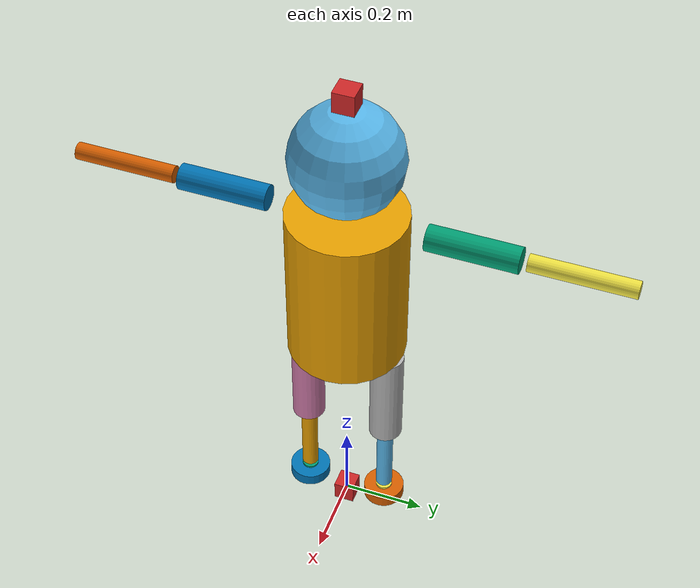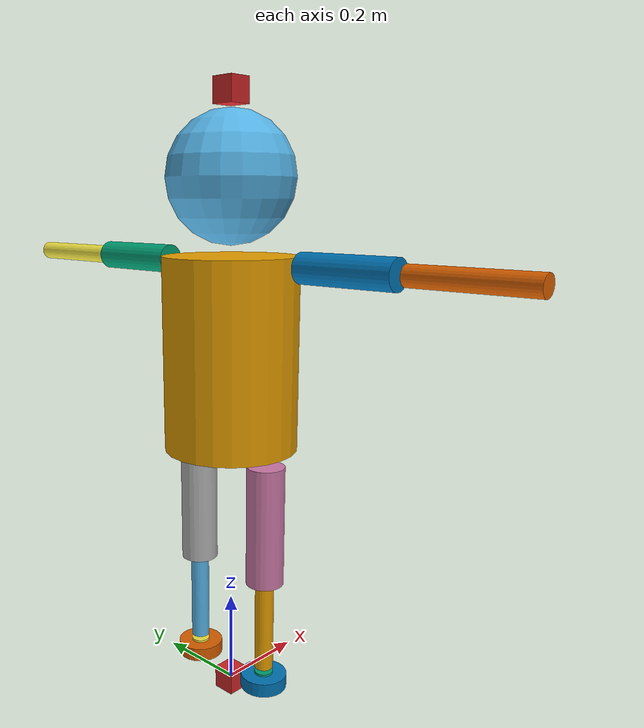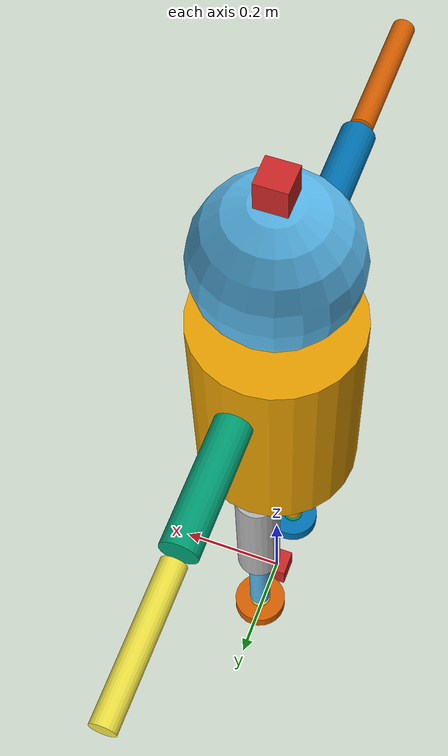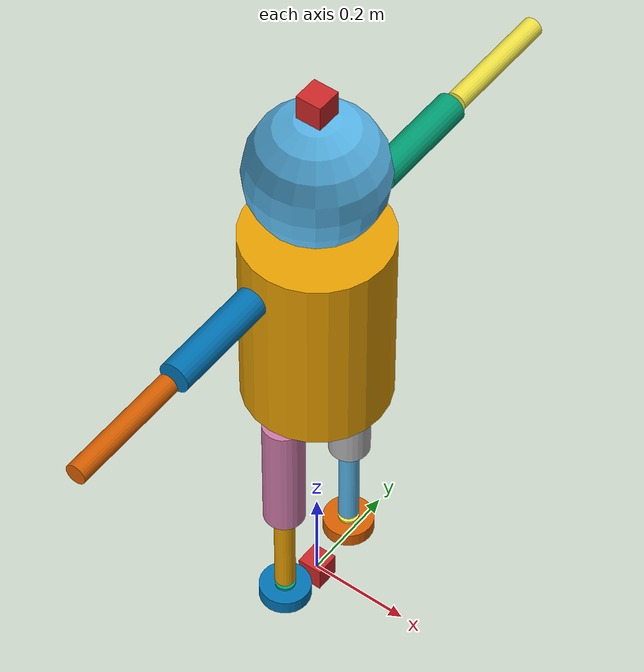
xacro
<?xml version="1.0" ?>
<robot name="human_model" xmlns:xacro="http://www.ros.org/wiki/xacro">

 <xacro:include filename="$(find hokuyo_description)/xacro/hokuyo.gazebo.xacro" />
 <xacro:include filename="$(find hokuyo_description)/xacro/camera.gazebo.xacro" />

<xacro:property name="width" value="0.14" />
<xacro:property name="bodylen" value="0.4" />
  <link name="base_link">
    <visual>
      <origin rpy="0 0 0" xyz="0 0 0.75"/>
      <geometry>
        <cylinder length="${bodylen}" radius="${width}"/>
      </geometry>
    </visual>
  <collision>
      <geometry>
         <cylinder length="${bodylen}" radius="${width}"/>
      </geometry>
    </collision>
    <inertial>
      <mass value="24.1572"/>
      <inertia ixx="0.23674056" ixy="0.0" ixz="0.0" iyy="0.23674056" iyz="0.0" izz="0.23674056"/>
    </inertial>
  </link>

<xacro:property name="width" value="0.13" />
     <link name="human_head">
    <visual>
      <origin rpy="0 0 0" xyz="0 0 0.15"/>
      <geometry>
        <sphere radius="${width}"/>
      </geometry>
    </visual>
    <collision>
      <geometry>
         <sphere radius="${width}"/>
      </geometry>
    </collision>
     <inertial>
      <mass value="9.0344"/>
      <inertia ixx="0.23674056" ixy="0.0" ixz="0.0" iyy="0.23674056" iyz="0.0" izz="0.23674056"/>
    </inertial>
  </link>

  <joint name="base_link_to_human_head" type="revolute">
    <origin rpy="0 0 0" xyz="0 0 0.95"/>
    <axis xyz="0 0 1"/>
    <parent link="base_link"/>
    <child link="human_head"/>
  <limit effort="1" lower="-1.57079632679" upper="1.57079632679" velocity="1"/>
  </joint>

<xacro:property name="width" value="0.03" />
<xacro:property name="bodylen" value="0.21" />
 <link name="right_forearm">
    <visual>
      <origin rpy="-1.57079632679 0 0" xyz="0 0.15 0.0"/>
      <geometry>
        <cylinder length="${bodylen}" radius="${width}"/>
      </geometry>
    </visual>
   <collision>
      <geometry>
        <cylinder length="${bodylen}" radius="${width}"/>
      </geometry>
    </collision>
     <inertial>
      <mass value="0.5892"/>
      <inertia ixx="0.00026514" ixy="0.0" ixz="0.0" iyy="0.00026514" iyz="0.0" izz="0.00026514"/>
    </inertial>
  </link>

 <joint name="right_forearm_to_base_link" type="revolute">
    <origin rpy="0 0 0" xyz="0 0.137654678 0.935545678"/>
   <axis xyz="0 1 0"/>
    <parent link="base_link"/>
    <child link="right_forearm"/>
   <limit effort="1" lower="-1.57079632679" upper="1.57079632679" velocity="1"/>
  </joint>

<xacro:property name="width" value="0.02" />
<xacro:property name="bodylen" value="0.24" />
<link name="right_arm">
    <visual>
      <origin rpy="-1.57079632679 0 0" xyz="0 0.1 0"/>
      <geometry>
        <cylinder length="${bodylen}" radius="${width}"/>
      </geometry>
    </visual> <collision>
      <geometry>
        <cylinder length="${bodylen}" radius="${width}"/>
      </geometry>
    </collision>
    <inertial>
      <mass value="0.2946"/>
      <inertia ixx="0.00005892" ixy="0.0" ixz="0.0" iyy="0.00005892" iyz="0.0" izz="0.00005892"/>
    </inertial>
  </link>

 <joint name="right_arm_to_forearm" type="revolute">
    <origin rpy="0 0 0" xyz="0.0 0.2899 0.0"/>
   <axis xyz="1 0 0"/>
    <parent link="right_forearm"/>
    <child link="right_arm"/>
   <limit effort="1" lower="-3.14159265359" upper="0.08726646" velocity="1"/>
  </joint>

<xacro:property name="width" value="0.03" />
<xacro:property name="bodylen" value="0.21" />
<link name="left_forearm">
    <visual>
      <origin rpy="-1.57079632679 0 0" xyz="0 -0.15 0.0"/>
      <geometry>
         <cylinder length="${bodylen}" radius="${width}"/>
      </geometry>
    </visual>
    <collision>
      <geometry>
         <cylinder length="${bodylen}" radius="${width}"/>
      </geometry>
    </collision>
      <inertial>
      <mass value="0.5892"/>
      <inertia ixx="0.00026514" ixy="0.0" ixz="0.0" iyy="0.00026514" iyz="0.0" izz="0.00026514"/>
    </inertial>
  </link>

 <joint name="left_forearm_to_base_link" type="revolute">
    <origin rpy="0 0 0" xyz="0 -0.137654678 0.935545678"/>
   <axis xyz="0 1 0"/>
    <parent link="base_link"/>
    <child link="left_forearm"/>
   <limit effort="1" lower="-1.57079632679" upper="1.57079632679" velocity="1"/>
  </joint>

<xacro:property name="width" value="0.02" />
<xacro:property name="bodylen" value="0.24" />
<link name="left_arm">
    <visual>
      <origin rpy="-1.57079632679 0 0" xyz="0 -0.1 0"/>
      <geometry>
        <cylinder length="${bodylen}" radius="${width}"/>
      </geometry>
    </visual>
    <collision>
      <geometry>
        <cylinder length="${bodylen}" radius="${width}"/>
      </geometry>
    </collision>
     <inertial>
      <mass value="0.2946"/>
      <inertia ixx="0.00005892" ixy="0.0" ixz="0.0" iyy="0.00005892" iyz="0.0" izz="0.00005892"/>
    </inertial>
  </link>

 <joint name="left_arm_to_forearm" type="revolute">
    <origin rpy="0 0 0" xyz="0.0 -0.2899 0.0"/>
   <axis xyz="1 0 0"/>
    <parent link="left_forearm"/>
    <child link="left_arm"/>
   <limit effort="1" lower="-3.14159265359" upper="0.08726646" velocity="1"/>
  </joint>

<xacro:property name="width" value="0.04" />
<xacro:property name="bodylen" value="0.26" />
  <link name="right_thigh">
    <visual>
      <origin rpy="0 0 0" xyz="0 0.0 -0.14"/>
      <geometry>
        <cylinder length="${bodylen}" radius="${width}"/>
      </geometry>
    </visual>
   <collision>
      <geometry>
        <cylinder length="${bodylen}" radius="${width}"/>
      </geometry>
    </collision>
     <inertial>
      <mass value="1.2766"/>
      <inertia ixx="0.00102128" ixy="0.0" ixz="0.0" iyy="0.00102128" iyz="0.0" izz="0.00102128"/>
    </inertial>
  </link>

 <joint name="right_thigh_to_base_link" type="revolute">
    <origin rpy="0 0 0" xyz="0 -0.1 0.54"/>
   <axis xyz="0 0 1"/>
    <parent link="base_link"/>
    <child link="right_thigh"/>
   <limit effort="1" lower="0" upper="1.57079632679" velocity="1"/>
  </joint>

<xacro:property name="width" value="0.04" />
<xacro:property name="bodylen" value="0.26" />
 <link name="left_thigh">
    <visual>
      <origin rpy="0 0 0" xyz="0 0.0 -0.14"/>
      <geometry>
        <cylinder length="${bodylen}" radius="${width}"/>
      </geometry>
    </visual>
    <collision>
      <geometry>
        <cylinder length="${bodylen}" radius="${width}"/>
      </geometry>
    </collision>
      <inertial>
      <mass value="1.2766"/>
      <inertia ixx="0.00102128" ixy="0.0" ixz="0.0" iyy="0.00102128" iyz="0.0" izz="0.00102128"/>
    </inertial>
  </link>

 <joint name="left_thigh_to_base_link" type="revolute">
    <origin rpy="0 0 0" xyz="0 0.1 0.54"/>
   <axis xyz="0 0 1"/>
    <parent link="base_link"/>
    <child link="left_thigh"/>
   <limit effort="1" lower="0" upper="1.57079632679" velocity="1"/>
  </joint>

<xacro:property name="width" value="0.02" />
<xacro:property name="bodylen" value="0.2" />
 <link name="right_leg">
    <visual>
      <origin rpy="0 0 0" xyz="0 0 -0.1"/>
      <geometry>
        <cylinder length="${bodylen}" radius="${width}"/>
      </geometry>
    </visual>
     <collision>
      <geometry>
        <cylinder length="${bodylen}" radius="${width}"/>
      </geometry>
    </collision>
     <inertial>
      <mass value="0.2455"/>
      <inertia ixx="0.0000491" ixy="0.0" ixz="0.0" iyy="0.0000491" iyz="0.0" izz="0.0000491"/>
    </inertial>
  </link>

 <joint name="right_leg_to_right_thigh" type="revolute">
    <origin rpy="0 0 0" xyz="0 0 -0.27"/>
   <axis xyz="0 0 1"/>
    <parent link="right_thigh"/>
    <child link="right_leg"/>
   <limit effort="1" lower="0" upper="-1.57079632679" velocity="1"/>
  </joint>

<xacro:property name="width" value="0.02" />
<xacro:property name="bodylen" value="0.2" />
<link name="left_leg">
    <visual>
      <origin rpy="0 0 0" xyz="0 0 -0.1"/>
      <geometry>
        <cylinder length="${bodylen}" radius="${width}"/>
      </geometry>
    </visual>
    <collision>
      <geometry>
        <cylinder length="${bodylen}" radius="${width}"/>
      </geometry>
    </collision>
       <inertial>
      <mass value="0.2455"/>
      <inertia ixx="0.0000491" ixy="0.0" ixz="0.0" iyy="0.0000491" iyz="0.0" izz="0.0000491"/>
    </inertial>
  </link>

 <joint name="left_leg_to_left_thigh" type="revolute">
    <origin rpy="0 0 0" xyz="0 0 -0.27"/>
   <axis xyz="0 0 1"/>
    <parent link="left_thigh"/>
    <child link="left_leg"/>
   <limit effort="1" lower="0" upper="-1.57079632679" velocity="1"/>
  </joint>

<xacro:property name="width" value="0.02" />
<xacro:property name="bodylen" value="0.03" />
 <link name="right_ankle">
    <visual>
      <origin rpy="0 0 0" xyz="0 0 -0.025"/>
      <geometry>
        <cylinder length="${bodylen}" radius="${width}"/>
      </geometry>
    </visual>
     <collision>
      <geometry>
        <cylinder length="${bodylen}" radius="${width}"/>
      </geometry>
    </collision>
    <inertial>
      <mass value="0.036334"/>
    <inertia ixx="0.000072667" ixy="0.0" ixz="0.0" iyy="0.000072667" iyz="0.0" izz="0.000072667"/>
    </inertial>
  </link>

 <joint name="right_leg_to_right_ankle" type="revolute">
    <origin rpy="0 0 0" xyz="0 0 -0.2"/>
   <axis xyz="0 1 0"/>
    <parent link="right_leg"/>
    <child link="right_ankle"/>
   <limit effort="1" lower="-1.57079632679" upper="1.57079632679" velocity="1"/>
  </joint>

<xacro:property name="width" value="0.02" />
<xacro:property name="bodylen" value="0.03" />
 <link name="left_ankle">
    <visual>
      <origin rpy="0 0 0" xyz="0 0 -0.025"/>
      <geometry>
        <cylinder length="${bodylen}" radius="${width}"/>
      </geometry>
    </visual>
     <collision>
      <geometry>
        <cylinder length="${bodylen}" radius="${width}"/>
      </geometry>
    </collision>
      <inertial>
      <mass value="0.036334"/>
    <inertia ixx="0.000072667" ixy="0.0" ixz="0.0" iyy="0.000072667" iyz="0.0" izz="0.000072667"/>
    </inertial>
  </link>

 <joint name="left_leg_to_left_ankle" type="revolute">
    <origin rpy="0 0 0" xyz="0 0 -0.2"/>
   <axis xyz="0 1 0"/>
    <parent link="left_leg"/>
    <child link="left_ankle"/>
   <limit effort="1" lower="-1.57079632679" upper="1.57079632679" velocity="1"/>
  </joint>

<xacro:property name="width" value="0.05" />
<xacro:property name="bodylen" value="0.03" />
 <link name="right_foot">
    <visual>
      <origin rpy="0 0 0" xyz="0 0 -0.03"/>
      <geometry>
        <cylinder length="${bodylen}" radius="${width}"/>
      </geometry>
    </visual>
      <collision>
      <geometry>
        <cylinder length="${bodylen}" radius="${width}"/>
      </geometry>
    </collision>
      <inertial>
      <mass value="0.22586"/>
    <inertia ixx="0.000282325" ixy="0.0" ixz="0.0" iyy="0.000282325" iyz="0.0" izz="0.000282325"/>
    </inertial>
  </link>

 <joint name="right_foot_to_right_ankle" type="fixed">
    <origin rpy="0 0 0" xyz="0 0 0"/>
    <parent link="right_ankle"/>
    <child link="right_foot"/>
  </joint>

<xacro:property name="width" value="0.05" />
<xacro:property name="bodylen" value="0.03" />
 <link name="left_foot">
    <visual>
      <origin rpy="0 0 0" xyz="0 0 -0.03"/>
      <geometry>
        <cylinder length="${bodylen}" radius="${width}"/>
      </geometry>
    </visual>
      <collision>
      <geometry>
        <cylinder length="${bodylen}" radius="${width}"/>
      </geometry>
    </collision>
    <inertial>
      <mass value="0.22586"/>
    <inertia ixx="0.000282325" ixy="0.0" ixz="0.0" iyy="0.000282325" iyz="0.0" izz="0.000282325"/>
    </inertial>
  </link>

<joint name="left_foot_to_left_ankle" type="fixed">
    <origin rpy="0 0 0" xyz="0 0 0"/>
    <parent link="left_ankle"/>
    <child link="left_foot"/>
  </joint>

 <!-- Hokuyo -->
<xacro:property name="hokuyo_link" value="0.05" /> <!-- Size of square 'laser' box -->
 <joint name="hokuyo_joint" type="fixed">
    <axis xyz="0 1 0" />
    <origin xyz="0 0 0" rpy="0 0 0"/>
    <parent link="base_link"/>
    <child link="hokuyo_link"/>
  </joint>

  <link name="hokuyo_link">
    <collision>
      <origin xyz="0 0 0" rpy="0 0 0"/>
      <geometry>
    <box size="${hokuyo_link} ${hokuyo_link} ${hokuyo_link}"/>
      </geometry>
    </collision>

    <visual>
      <origin xyz="0 0 0" rpy="0 0 0"/>
      <geometry>
    <box size="${hokuyo_link} ${hokuyo_link} ${hokuyo_link}"/>
    <mesh filename="package://human_description/mesh//hokuyo.dae"/>
      </geometry>
      <material name="red"/>
    </visual>

    <inertial>
      <mass value="1e-5" />
      <origin xyz="0 0 0" rpy="0 0 0"/>
      <inertia ixx="1e-6" ixy="0" ixz="0" iyy="1e-6" iyz="0" izz="1e-6" />
    </inertial>
  </link>

 <!-- Camera -->
 <xacro:property name="camera_link" value="0.05" /> <!-- Size of square 'camera' box -->
 <joint name="camera_joint" type="fixed">
    <axis xyz="0 1 0" />
    <origin xyz="0 0 1.26" rpy="0 0 0"/>
    <parent link="base_link"/>
    <child link="camera_link"/>
  </joint>

  <link name="camera_link">
    <collision>
      <origin xyz="0 0 0" rpy="0 0 0"/>
      <geometry>
    <box size="${camera_link} ${camera_link} ${camera_link}"/>
      </geometry>
    </collision>

    <visual>
      <origin xyz="0 0 0" rpy="0 0 0"/>
      <geometry>
    <box size="${camera_link} ${camera_link} ${camera_link}"/>
      </geometry>
      <material name="red"/>
    </visual>

    <inertial>
      <mass value="1e-5" />
      <origin xyz="0 0 0" rpy="0 0 0"/>
      <inertia ixx="1e-6" ixy="0" ixz="0" iyy="1e-6" iyz="0" izz="1e-6" />
    </inertial>
  </link>

</robot>
